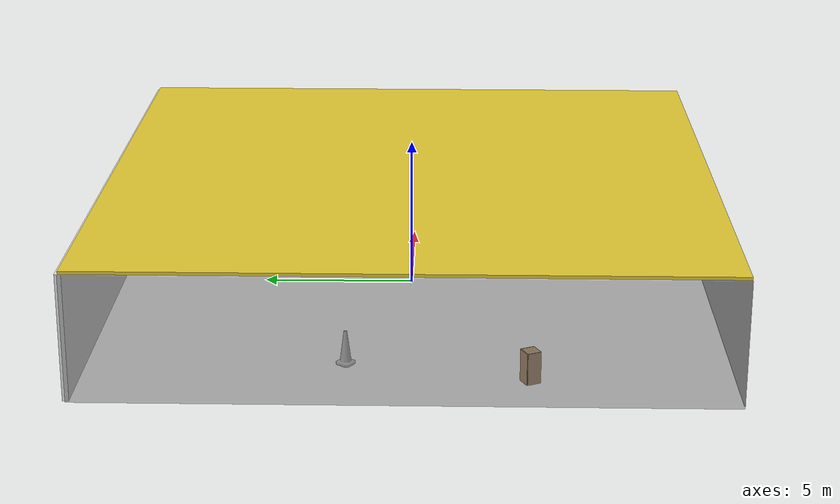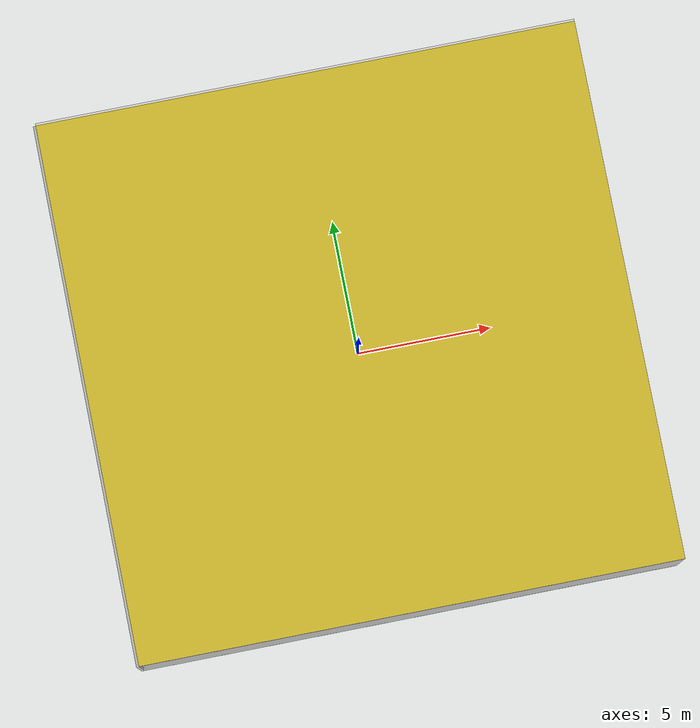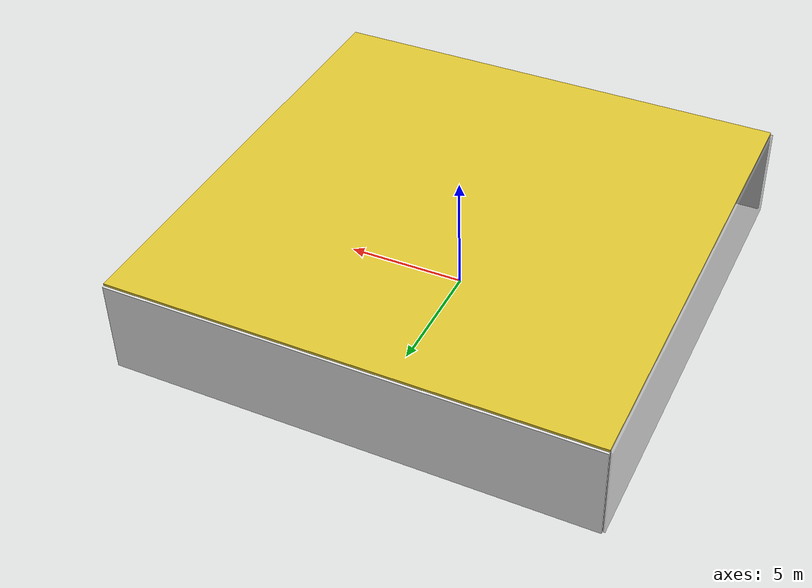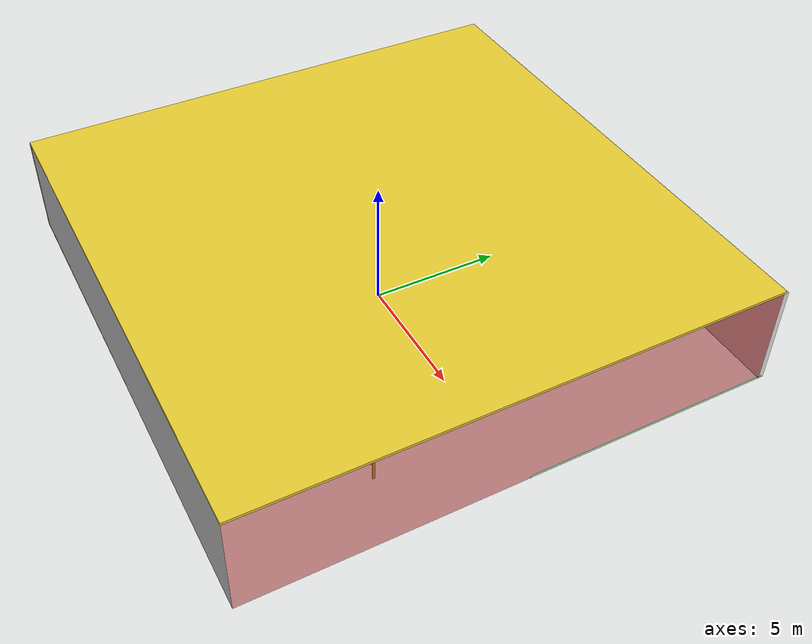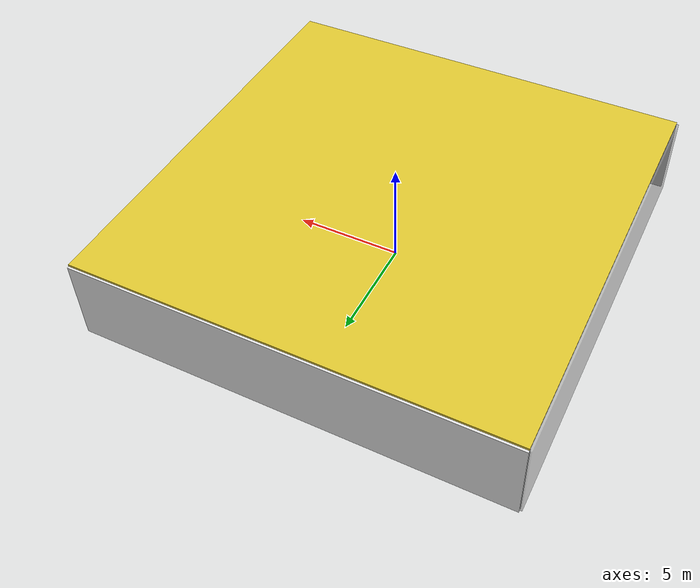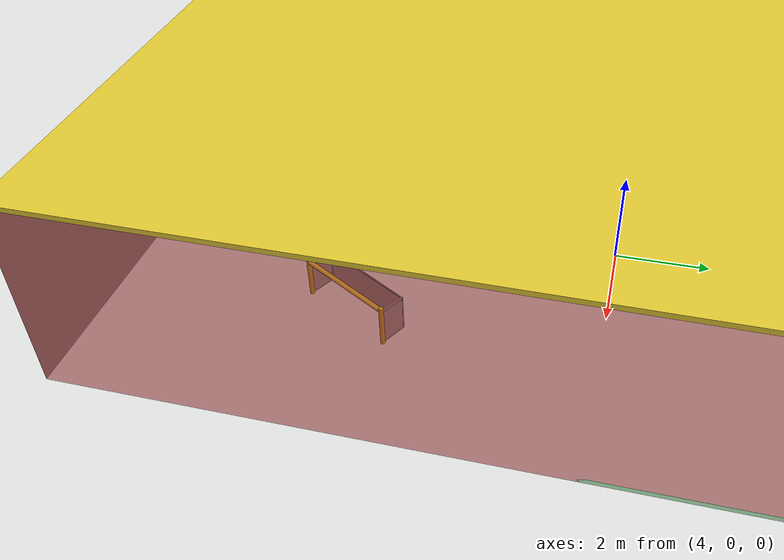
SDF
<sdf version="1.4">
 <world name="default">
  <physics type="ode">
   <max_step_size>0.001</max_step_size>
   <real_time_factor>1</real_time_factor>
   <real_time_update_rate>1000</real_time_update_rate>
   <gravity>0 0 -9.8</gravity>
  </physics>
  <scene><ambient>0.4 0.4 0.4 1</ambient><background>0.7 0.7 0.7 1</background><shadows>1</shadows></scene>
  <model name="Surrounding">
   <static>1</static>
   <link name="Ceiling">
    <collision name="Ceiling_Collision"><geometry><box><size>20 20 0.1</size></box></geometry></collision>
    <visual name="Ceiling_Visual">
     <geometry><box><size>20 20 0.1</size></box></geometry>
     <material>
      <script><uri>file://media/materials/scripts/gazebo.material</uri><name>Gazebo/ZincYellow</name></script>
     </material>
    </visual>
    <pose>0 0 4.05 0 0 0</pose>
   </link>
   <link name="Wall_South">
    <collision name="Wall_South_Collision">
     <geometry><box><size>20 0 4</size></box></geometry>
     <pose>0 0 2 0 -0 0</pose>
    </collision>
    <visual name="Wall_South_Visual">
     <pose>0 0 2 0 -0 0</pose>
     <geometry><box><size>20 0 4</size></box></geometry>
     <material>
      <script><uri>file://media/materials/scripts/gazebo.material</uri><name>Gazebo/CloudySky</name></script>
     </material>
    </visual>
    <velocity_decay><linear>0</linear><angular>0</angular></velocity_decay>
    <pose>0 -10 0 0 -0 0</pose>
   </link>
   <link name="Wall_East">
    <collision name="Wall_21_Collision">
     <geometry><box><size>20 0 4</size></box></geometry>
     <pose>0 0 2 0 -0 0</pose>
    </collision>
    <visual name="Wall_21_Visual">
     <pose>0 0 2 0 -0 0</pose>
     <geometry><box><size>20 0 4</size></box></geometry>
     <material>
      <script><uri>file://media/materials/scripts/gazebo.material</uri><name>Gazebo/RedTransparent</name></script>
     </material>
    </visual>
    <velocity_decay><linear>0</linear><angular>0</angular></velocity_decay>
    <pose>10 0 0 0 -0 1.5708</pose>
   </link>
   <link name="Wall_North">
    <collision name="Wall_22_Collision">
     <geometry><box><size>20 0.2 4</size></box></geometry>
     <pose>0 0 2 0 -0 0</pose>
    </collision>
    <visual name="Wall_22_Visual">
     <pose>0 0 2 0 -0 0</pose>
     <geometry><box><size>20 0.2 4</size></box></geometry>
     <material>
      <script><uri>file://media/materials/scripts/gazebo.material</uri><name>Gazebo/White</name></script>
     </material>
    </visual>
    <velocity_decay><linear>0</linear><angular>0</angular></velocity_decay>
    <pose>0 10 0 0 -0 0</pose>
   </link>
   <link name="Wall_West">
    <collision name="Wall_23_Collision">
     <geometry><box><size>20 0.2 4</size></box></geometry>
     <pose>0 0 2 0 -0 0</pose>
    </collision>
    <visual name="Wall_23_Visual">
     <pose>0 0 2 0 -0 0</pose>
     <geometry><box><size>20 0.2 4</size></box></geometry>
     <material>
      <script><uri>file://media/materials/scripts/gazebo.material</uri><name>Gazebo/GreyTransparent</name></script>
     </material>
    </visual>
    <velocity_decay><linear>0</linear><angular>0</angular></velocity_decay>
    <pose>-10 0 0 0 0 -1.5708</pose>
   </link>
   <link name="Ground_link">
    <collision name="collision">
     <pose>0 0 .05 0 -0 0</pose>
     <geometry><box><size>20 20 0.1</size></box></geometry>
    </collision>
    <visual name="visual">
     <pose>0 0 .05 0 -0 0</pose>
     <geometry><box><size>20 20 0.1</size></box></geometry>
     <material>
      <script><uri>file://media/materials/scripts/gazebo.material</uri><name>Gazebo/GreenTransparent</name></script>
     </material>
    </visual>
   </link>
   <static>1</static>
  </model>
  <spherical_coordinates>
   <surface_model>EARTH_WGS84</surface_model>
   <latitude_deg>0</latitude_deg>
   <longitude_deg>0</longitude_deg>
   <elevation>0</elevation>
   <heading_deg>0</heading_deg>
  </spherical_coordinates>
  <light name="lightball_0" type="diffuse">
   <diffuse>0.8 0.8 0.8 1</diffuse>
   <specular>0.2 0.2 0.2 1</specular>
   <attenuation>
    <range>100</range>
    <constant>0.7</constant>
    <linear>0.01</linear>
    <quadratic>0.001</quadratic>
   </attenuation>
   <direction>-0.5 0.1 -0.9</direction>
   <pose>-9.5016964911 -0.559441366014 1.16397410502 0 0 0</pose>
  </light>
  <light name="lightball_1" type="diffuse">
   <diffuse>0.8 0.8 0.8 1</diffuse>
   <specular>0.2 0.2 0.2 1</specular>
   <attenuation>
    <range>100</range>
    <constant>0.7</constant>
    <linear>0.01</linear>
    <quadratic>0.001</quadratic>
   </attenuation>
   <direction>-0.5 0.1 -0.9</direction>
   <pose>7.85492954397 -4.38208647114 2.83943997803 0 0 0</pose>
  </light>
  <light name="lightball_2" type="diffuse">
   <diffuse>0.8 0.8 0.8 1</diffuse>
   <specular>0.2 0.2 0.2 1</specular>
   <attenuation>
    <range>100</range>
    <constant>0.7</constant>
    <linear>0.01</linear>
    <quadratic>0.001</quadratic>
   </attenuation>
   <direction>-0.5 0.1 -0.9</direction>
   <pose>0.341768401225 1.74702742954 1.53656358777 0 0 0</pose>
  </light>
  <light name="lightball_3" type="diffuse">
   <diffuse>0.8 0.8 0.8 1</diffuse>
   <specular>0.2 0.2 0.2 1</specular>
   <attenuation>
    <range>100</range>
    <constant>0.7</constant>
    <linear>0.01</linear>
    <quadratic>0.001</quadratic>
   </attenuation>
   <direction>-0.5 0.1 -0.9</direction>
   <pose>0.0280068270315 9.19021972263 2.1132657204 0 0 0</pose>
  </light>
  <light name="lightball_4" type="diffuse">
   <diffuse>0.8 0.8 0.8 1</diffuse>
   <specular>0.2 0.2 0.2 1</specular>
   <attenuation>
    <range>100</range>
    <constant>0.7</constant>
    <linear>0.01</linear>
    <quadratic>0.001</quadratic>
   </attenuation>
   <direction>-0.5 0.1 -0.9</direction>
   <pose>1.71268433013 -2.10108119196 2.72781730718 0 0 0</pose>
  </light>
  <light name="lightball_5" type="diffuse">
   <diffuse>0.8 0.8 0.8 1</diffuse>
   <specular>0.2 0.2 0.2 1</specular>
   <attenuation>
    <range>100</range>
    <constant>0.7</constant>
    <linear>0.01</linear>
    <quadratic>0.001</quadratic>
   </attenuation>
   <direction>-0.5 0.1 -0.9</direction>
   <pose>-3.6261928657 -0.499229157983 0.571275034328 0 0 0</pose>
  </light>
  <light name="lightball_6" type="diffuse">
   <diffuse>0.8 0.8 0.8 1</diffuse>
   <specular>0.2 0.2 0.2 1</specular>
   <attenuation>
    <range>100</range>
    <constant>0.7</constant>
    <linear>0.01</linear>
    <quadratic>0.001</quadratic>
   </attenuation>
   <direction>-0.5 0.1 -0.9</direction>
   <pose>3.28376739786 8.52531237944 1.45046939779 0 0 0</pose>
  </light>
  <light name="lightball_7" type="diffuse">
   <diffuse>0.8 0.8 0.8 1</diffuse>
   <specular>0.2 0.2 0.2 1</specular>
   <attenuation>
    <range>100</range>
    <constant>0.7</constant>
    <linear>0.01</linear>
    <quadratic>0.001</quadratic>
   </attenuation>
   <direction>-0.5 0.1 -0.9</direction>
   <pose>3.70940325366 9.10585665917 1.04101161519 0 0 0</pose>
  </light>
  <light name="lightball_8" type="diffuse">
   <diffuse>0.8 0.8 0.8 1</diffuse>
   <specular>0.2 0.2 0.2 1</specular>
   <attenuation>
    <range>100</range>
    <constant>0.7</constant>
    <linear>0.01</linear>
    <quadratic>0.001</quadratic>
   </attenuation>
   <direction>-0.5 0.1 -0.9</direction>
   <pose>2.71642403948 -1.72974840892 1.66470281134 0 0 0</pose>
  </light>
  <light name="lightball_9" type="diffuse">
   <diffuse>0.8 0.8 0.8 1</diffuse>
   <specular>0.2 0.2 0.2 1</specular>
   <attenuation>
    <range>100</range>
    <constant>0.7</constant>
    <linear>0.01</linear>
    <quadratic>0.001</quadratic>
   </attenuation>
   <direction>-0.5 0.1 -0.9</direction>
   <pose>-7.20940828328 8.88888442819 1.60264195382 0 0 0</pose>
  </light>
  <include><uri>model://cabinet</uri><pose>-8.26579114272 -3.784123429 0 0 0 2.01427129483</pose></include>
  <include>
   <uri>model://construction_cone</uri>
   <pose>-7.05853941815 1.87674731732 0 0 0 2.51021042855</pose>
  </include>
  <include><uri>model://cabinet</uri><pose>1.28329976617 0.817309618754 0 0 0 2.01927496275</pose></include>
  <include><uri>model://cabinet</uri><pose>5.17033669218 -1.66505382775 0 0 0 0.752924952455</pose></include>
  <include>
   <uri>model://robocup_3Dsim_goal</uri>
   <pose>7.13637597175 -5.07688824766 0 0 0 2.62413497714</pose>
  </include>
 </world>
</sdf>

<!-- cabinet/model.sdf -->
<sdf version="1.5">
  <model name="cabinet">
    <static>true</static>
    <link name="cabinet_bottom_plate">
      <inertial>
        <pose>0 0 -1 0 0 0</pose>
        <inertia>
          <ixx>2.050000</ixx>
          <ixy>0</ixy>
          <ixz>0</ixz>
          <iyy>2.050000</iyy>
          <iyz>0</iyz>
          <izz>2.050000</izz>
        </inertia>
        <mass>25.000000</mass>
      </inertial>
      <collision name="cabinet_bottom_plate_geom">
        <pose>0 0 0.010000 0 0 0</pose>
        <geometry>
          <box>
            <size>0.450000 0.450000 0.020000</size>
          </box>
        </geometry>
      </collision>
      <visual name="cabinet_bottom_plate_geom_visual">
        <pose>0 0 0.010000 0 0 0</pose>
        <geometry>
          <box>
            <size>0.450000 0.450000 0.020000</size>
          </box>
        </geometry>
        <material>
          <script>
            <uri>model://media/materials/scripts/gazebo.material</uri>
            <name>Gazebo/Wood</name>
          </script>
        </material>
      </visual>
      <collision name="cabinet_bottom_plate_geom_cabinet_back_plate">
        <pose>0.235000 0 0.510000 0 0 0</pose>
        <geometry>
          <box>
            <size>0.020000 0.450000 1.020000</size>
          </box>
        </geometry>
      </collision>
      <visual name="cabinet_bottom_plate_geom_cabinet_back_plate_visual">
        <pose>0.235000 0 0.510000 0 0 0</pose>
        <geometry>
          <box>
            <size>0.020000 0.450000 1.020000</size>
          </box>
        </geometry>
        <material>
          <script>
            <uri>model://media/materials/scripts/gazebo.material</uri>
            <name>Gazebo/Wood</name>
          </script>
        </material>
      </visual>
      <collision name="cabinet_bottom_plate_geom_cabinet_left_plate">
        <pose>0 0.235000 0.510000 0 0 0</pose>
        <geometry>
          <box>
            <size>0.450000 0.020000 1.020000</size>
          </box>
        </geometry>
      </collision>
      <visual name="cabinet_bottom_plate_geom_cabinet_left_plate_visual">
        <pose>0 0.235000 0.510000 0 0 0</pose>
        <geometry>
          <box>
            <size>0.450000 0.020000 1.020000</size>
          </box>
        </geometry>
        <material>
          <script>
            <uri>model://media/materials/scripts/gazebo.material</uri>
            <name>Gazebo/Wood</name>
          </script>
        </material>
      </visual>
      <collision name="cabinet_bottom_plate_geom_cabinet_middle_plate">
        <pose>0 0 0.510000 0 0 0</pose>
        <geometry>
          <box>
            <size>0.450000 0.450000 0.020000</size>
          </box>
        </geometry>
      </collision>
      <visual name="cabinet_bottom_plate_geom_cabinet_middle_plate_visual">
        <pose>0 0 0.510000 0 0 0</pose>
        <geometry>
          <box>
            <size>0.450000 0.450000 0.020000</size>
          </box>
        </geometry>
        <material>
          <script>
            <uri>model://media/materials/scripts/gazebo.material</uri>
            <name>Gazebo/Wood</name>
          </script>
        </material>
      </visual>
      <collision name="cabinet_bottom_plate_geom_cabinet_right_plate">
        <pose>0 -0.235000 0.510000 0 0 0</pose>
        <geometry>
          <box>
            <size>0.450000 0.020000 1.020000</size>
          </box>
        </geometry>
      </collision>
      <visual name="cabinet_bottom_plate_geom_cabinet_right_plate_visual">
        <pose>0 -0.235000 0.510000 0 0 0</pose>
        <geometry>
          <box>
            <size>0.450000 0.020000 1.020000</size>
          </box>
        </geometry>
        <material>
          <script>
            <uri>model://media/materials/scripts/gazebo.material</uri>
            <name>Gazebo/Wood</name>
          </script>
        </material>
      </visual>
      <collision name="cabinet_bottom_plate_geom_cabinet_top_plate">
        <pose>0 0 1.010000 0 0 0</pose>
        <geometry>
          <box>
            <size>0.450000 0.450000 0.020000</size>
          </box>
        </geometry>
      </collision>
      <visual name="cabinet_bottom_plate_geom_cabinet_top_plate_visual">
        <pose>0 0 1.010000 0 0 0</pose>
        <geometry>
          <box>
            <size>0.450000 0.450000 0.020000</size>
          </box>
        </geometry>
        <material>
          <script>
            <uri>model://media/materials/scripts/gazebo.material</uri>
            <name>Gazebo/Wood</name>
          </script>
        </material>
      </visual>
    </link>
  </model>
</sdf>

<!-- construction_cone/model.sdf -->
<sdf version="1.5">
  <model name="Construction Cone">
    <link name="link">
      <collision name="collision">
        <geometry>
          <mesh>
            <scale>10 10 10</scale>
            <uri>file://isr-testbed/construction_cone/meshes/construction_cone.dae</uri>
          </mesh>
        </geometry>
      </collision>
      <visual name="visual">
        <geometry>
          <mesh>
            <scale>10 10 10</scale>
            <uri>file://isr-testbed/construction_cone/meshes/construction_cone.dae</uri>
          </mesh>
        </geometry>
      </visual>
    </link>
  </model>
</sdf>

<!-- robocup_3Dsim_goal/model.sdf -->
<sdf version="1.5">
  <model name="robocup_3d_goal">
    <static>true</static>
    <link name="left_post">
      <pose>0 1.05 0.45 0 0 0</pose>
      <collision name="collision">
        <geometry>
          <cylinder>
            <radius>0.05</radius>
            <length>0.9</length>
          </cylinder>
        </geometry>
      </collision>
      <visual name="visual">
        <geometry>
          <cylinder>
            <radius>0.05</radius>
            <length>0.9</length>
          </cylinder>
        </geometry>
        <material>
          <script>
            <uri>file://media/materials/scripts/gazebo.material</uri>
            <name>Gazebo/ZincYellow</name>
          </script>
        </material>
      </visual>
    </link>
    <link name="left_support_horiz_lower">
      <pose>0.30 1.05 0.01 0 0 0</pose>
      <collision name="collision">
        <geometry>
          <box>
            <size>0.50 0.02 0.02</size>
          </box>
        </geometry>
      </collision>
      <visual name="visual">
        <geometry>
          <box>
            <size>0.50 0.02 0.02</size>
          </box>
        </geometry>
        <material>
          <script>
            <uri>file://media/materials/scripts/gazebo.material</uri>
            <name>Gazebo/White</name>
          </script>
        </material>
      </visual>
    </link>
    <link name="left_support_horiz_upper">
      <pose>0.30 1.05 0.79 0 0 0</pose>
      <collision name="collision">
        <geometry>
          <box>
            <size>0.50 0.02 0.02</size>
          </box>
        </geometry>
      </collision>
      <visual name="visual">
        <geometry>
          <box>
            <size>0.50 0.02 0.02</size>
          </box>
        </geometry>
        <material>
          <script>
            <uri>file://media/materials/scripts/gazebo.material</uri>
            <name>Gazebo/White</name>
          </script>
        </material>
      </visual>
    </link>
    <link name="left_support_vertical">
      <pose>0.56 1.05 0.4 0 1.5708 0</pose>
      <collision name="collision">
        <geometry>
          <box>
            <size>0.80 0.02 0.02</size>
          </box>
        </geometry>
      </collision>
      <visual name="visual">
        <geometry>
          <box>
            <size>0.80 0.02 0.02</size>
          </box>
        </geometry>
        <material>
          <script>
            <uri>file://media/materials/scripts/gazebo.material</uri>
            <name>Gazebo/White</name>
          </script>
        </material>
      </visual>
    </link>
    <link name="right_support_horiz_lower">
      <pose>0.30 -1.05 0.01 0 0 0</pose>
      <collision name="collision">
        <geometry>
          <box>
            <size>0.50 0.02 0.02</size>
          </box>
        </geometry>
      </collision>
      <visual name="visual">
        <geometry>
          <box>
            <size>0.50 0.02 0.02</size>
          </box>
        </geometry>
        <material>
          <script>
            <uri>file://media/materials/scripts/gazebo.material</uri>
            <name>Gazebo/White</name>
          </script>
        </material>
      </visual>
    </link>
    <link name="right_support_horiz_upper">
      <pose>0.30 -1.05 0.79 0 0 0</pose>
      <collision name="collision">
        <geometry>
          <box>
            <size>0.50 0.02 0.02</size>
          </box>
        </geometry>
      </collision>
      <visual name="visual">
        <geometry>
          <box>
            <size>0.50 0.02 0.02</size>
          </box>
        </geometry>
        <material>
          <script>
            <uri>file://media/materials/scripts/gazebo.material</uri>
            <name>Gazebo/White</name>
          </script>
        </material>
      </visual>
    </link>
    <link name="right_support_vertical">
      <pose>0.56 -1.05 0.4 0 1.5708 0</pose>
      <collision name="collision">
        <geometry>
          <box>
            <size>0.80 0.02 0.02</size>
          </box>
        </geometry>
      </collision>
      <visual name="visual">
        <geometry>
          <box>
            <size>0.80 0.02 0.02</size>
          </box>
        </geometry>
        <material>
          <script>
            <uri>file://media/materials/scripts/gazebo.material</uri>
            <name>Gazebo/White</name>
          </script>
        </material>
      </visual>
    </link>
    <link name="center_support_horiz_lower">
      <pose>0.56 0 0.01 0 1.5708 0</pose>
      <collision name="collision">
        <geometry>
          <box>
            <size>0.02 2.08 0.02</size>
          </box>
        </geometry>
      </collision>
      <visual name="visual">
        <geometry>
          <box>
            <size>0.02 2.08 0.02</size>
          </box>
        </geometry>
        <material>
          <script>
            <uri>file://media/materials/scripts/gazebo.material</uri>
            <name>Gazebo/White</name>
          </script>
        </material>
      </visual>
    </link>
    <link name="center_support_horiz_upper">
      <pose>0.56 0 0.79 0 1.5708 0</pose>
      <collision name="collision">
        <geometry>
          <box>
            <size>0.02 2.08 0.02</size>
          </box>
        </geometry>
      </collision>
      <visual name="visual">
        <geometry>
          <box>
            <size>0.02 2.08 0.02</size>
          </box>
        </geometry>
        <material>
          <script>
            <uri>file://media/materials/scripts/gazebo.material</uri>
            <name>Gazebo/White</name>
          </script>
        </material>
      </visual>
    </link>
    <link name="right_post">
      <pose>0 -1.05 0.45 0 0 0</pose>
      <collision name="collision">
        <geometry>
          <cylinder>
            <radius>0.05</radius>
            <length>0.9</length>
          </cylinder>
        </geometry>
      </collision>
      <visual name="visual">
        <geometry>
          <cylinder>
            <radius>0.05</radius>
            <length>0.9</length>
          </cylinder>
        </geometry>
        <material>
          <script>
            <uri>file://media/materials/scripts/gazebo.material</uri>
            <name>Gazebo/ZincYellow</name>
          </script>
        </material>
      </visual>
    </link>
    <link name="crossbar">
      <pose>0 0 0.85 1.57 1.57 0</pose>
      <collision name="collision">
        <geometry>
          <cylinder>
            <radius>0.05</radius>
            <length>2.0</length>
          </cylinder>
        </geometry>
      </collision>
      <visual name="visual">
        <geometry>
          <cylinder>
            <radius>0.05</radius>
            <length>2.0</length>
          </cylinder>
        </geometry>
        <material>
          <script>
            <uri>file://media/materials/scripts/gazebo.material</uri>
            <name>Gazebo/ZincYellow</name>
          </script>
        </material>
      </visual>
    </link>
    <link name="center_net">
      <pose>0.56 0 0.40 0 0 0</pose>
      <collision name="collision">
        <geometry>
          <box>
            <size>0.01 2.1 0.80</size>
          </box>
        </geometry>
      </collision>
      <visual name="visual">
        <geometry>
          <box>
            <size>0.01 2.1 0.80</size>
          </box>
        </geometry>
        <material>
          <script>
            <uri>model://../model_source/models/robocup09_spl_field/materials/scripts/</uri>
            <uri>model://../model_source/models/robocup09_spl_field/materials/textures/</uri>
            <name>RoboCup/Net</name>
          </script>
        </material>
      </visual>
    </link>
    <link name="left_net">
      <pose>0.30 1.05 0.40 0 0 0</pose>
      <collision name="collision">
        <geometry>
          <box>
            <size>0.50 0.01 0.76</size>
          </box>
        </geometry>
      </collision>
      <visual name="visual">
        <geometry>
          <box>
            <size>0.50 0.01 0.76</size>
          </box>
        </geometry>
        <material>
          <script>
            <uri>model://../model_source/models/robocup09_spl_field/materials/scripts/</uri>
            <uri>model://../model_source/models/robocup09_spl_field/materials/textures/</uri>
            <name>RoboCup/Net</name>
          </script>
        </material>
      </visual>
    </link>
    <link name="right_net">
      <pose>0.30 -1.05 0.40 0 0 0</pose>
      <collision name="collision">
        <geometry>
          <box>
            <size>0.50 0.01 0.76</size>
          </box>
        </geometry>
      </collision>
      <visual name="visual">
        <geometry>
          <box>
            <size>0.50 0.01 0.76</size>
          </box>
        </geometry>
        <material>
          <script>
            <uri>model://../model_source/models/robocup09_spl_field/materials/scripts/</uri>
            <uri>model://../model_source/models/robocup09_spl_field/materials/textures/</uri>
            <name>RoboCup/Net</name>
          </script>
        </material>
      </visual>
    </link>
  </model>
</sdf>
